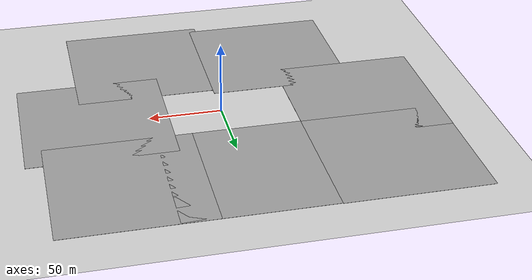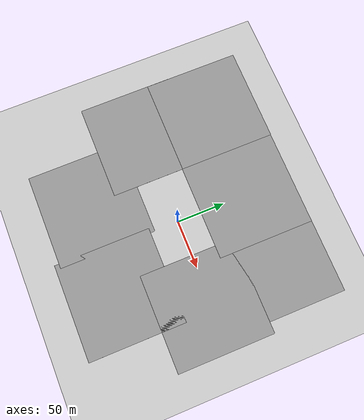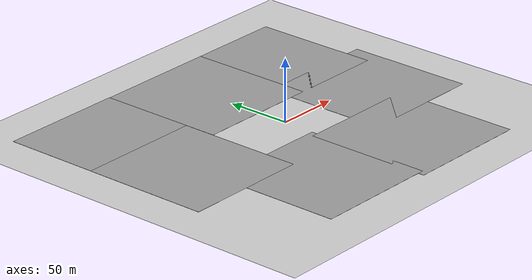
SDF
<sdf version="1.6">
 <world name="default">
  <light name="sun" type="directional">
   <pose>0 0 10 0 -0 0</pose>
   <diffuse>0.8 0.8 0.8 1</diffuse>
   <specular>0.2 0.2 0.2 1</specular>
   <attenuation>
    <range>1000</range>
    <constant>0.9</constant>
    <linear>0.01</linear>
    <quadratic>0.001</quadratic>
   </attenuation>
   <direction>-0.5 0.1 -0.9</direction>
  </light>
  <model name="ground_plane">
   <static>1</static>
   <link name="link">
    <collision name="collision">
     <geometry><plane><normal>0 0 1</normal><size>100 100</size></plane></geometry>
     <surface><friction><ode><mu>100</mu><mu2>50</mu2></ode></friction></surface>
    </collision>
    <visual name="visual">
     <cast_shadows>0</cast_shadows>
     <geometry><plane><normal>0 0 1</normal><size>100 100</size></plane></geometry>
     <material>
      <script><uri>file://media/materials/scripts/gazebo.material</uri><name>Gazebo/Grey</name></script>
     </material>
    </visual>
   </link>
  </model>
  <gravity>0 0 -9.8</gravity>
  <magnetic_field>6e-06 2.3e-05 -4.2e-05</magnetic_field>
  <atmosphere type="adiabatic"/>
  <physics name="default_physics" default="0" type="ode">
   <max_step_size>0.001</max_step_size>
   <real_time_factor>1</real_time_factor>
   <real_time_update_rate>1000</real_time_update_rate>
  </physics>
  <scene><ambient>0.4 0.4 0.4 1</ambient><background>0.7 0.7 0.7 1</background><shadows>1</shadows></scene>
  <spherical_coordinates>
   <surface_model>EARTH_WGS84</surface_model>
   <latitude_deg>0</latitude_deg>
   <longitude_deg>0</longitude_deg>
   <elevation>0</elevation>
   <heading_deg>0</heading_deg>
  </spherical_coordinates>
  <model name="ground_plane_0">
   <static>1</static>
   <link name="link">
    <collision name="collision">
     <geometry><plane><normal>0 0 1</normal><size>100 100</size></plane></geometry>
     <surface>
      <contact><collide_bitmask>65535</collide_bitmask></contact>
      <friction><ode><mu>100</mu><mu2>50</mu2></ode></friction>
     </surface>
    </collision>
    <visual name="visual">
     <cast_shadows>0</cast_shadows>
     <geometry><plane><normal>0 0 1</normal><size>100 100</size></plane></geometry>
     <material>
      <script><uri>file://media/materials/scripts/gazebo.material</uri><name>Gazebo/Grey</name></script>
     </material>
    </visual>
   </link>
   <pose>-99.8198 0.253195 0 0 -0 0</pose>
  </model>
  <model name="ground_plane_1">
   <static>1</static>
   <link name="link">
    <collision name="collision">
     <geometry><plane><normal>0 0 1</normal><size>100 100</size></plane></geometry>
     <surface>
      <contact><collide_bitmask>65535</collide_bitmask></contact>
      <friction><ode><mu>100</mu><mu2>50</mu2></ode></friction>
     </surface>
    </collision>
    <visual name="visual">
     <cast_shadows>0</cast_shadows>
     <geometry><plane><normal>0 0 1</normal><size>100 100</size></plane></geometry>
     <material>
      <script><uri>file://media/materials/scripts/gazebo.material</uri><name>Gazebo/Grey</name></script>
     </material>
    </visual>
   </link>
   <pose>0 75 0 0 -0 0</pose>
  </model>
  <model name="ground_plane_2">
   <static>1</static>
   <link name="link">
    <collision name="collision">
     <geometry><plane><normal>0 0 1</normal><size>100 100</size></plane></geometry>
     <surface>
      <contact><collide_bitmask>65535</collide_bitmask></contact>
      <friction><ode><mu>100</mu><mu2>50</mu2></ode></friction>
     </surface>
    </collision>
    <visual name="visual">
     <cast_shadows>0</cast_shadows>
     <geometry><plane><normal>0 0 1</normal><size>100 100</size></plane></geometry>
     <material>
      <script><uri>file://media/materials/scripts/gazebo.material</uri><name>Gazebo/Grey</name></script>
     </material>
    </visual>
   </link>
   <pose>75 75 0 0 -0 0</pose>
  </model>
  <model name="ground_plane_3">
   <static>1</static>
   <link name="link">
    <collision name="collision">
     <geometry><plane><normal>0 0 1</normal><size>100 100</size></plane></geometry>
     <surface>
      <contact><collide_bitmask>65535</collide_bitmask></contact>
      <friction><ode><mu>100</mu><mu2>50</mu2></ode></friction>
     </surface>
    </collision>
    <visual name="visual">
     <cast_shadows>0</cast_shadows>
     <geometry><plane><normal>0 0 1</normal><size>100 100</size></plane></geometry>
     <material>
      <script><uri>file://media/materials/scripts/gazebo.material</uri><name>Gazebo/Grey</name></script>
     </material>
    </visual>
   </link>
   <pose>86.6058 -5.23485 0 0 -0 0</pose>
  </model>
  <model name="ground_plane_4">
   <static>1</static>
   <link name="link">
    <collision name="collision">
     <geometry><plane><normal>0 0 1</normal><size>100 100</size></plane></geometry>
     <surface>
      <contact><collide_bitmask>65535</collide_bitmask></contact>
      <friction><ode><mu>100</mu><mu2>50</mu2></ode></friction>
     </surface>
    </collision>
    <visual name="visual">
     <cast_shadows>0</cast_shadows>
     <geometry><plane><normal>0 0 1</normal><size>100 100</size></plane></geometry>
     <material>
      <script><uri>file://media/materials/scripts/gazebo.material</uri><name>Gazebo/Grey</name></script>
     </material>
    </visual>
   </link>
   <pose>45 -79.7452 0 0 -0 0</pose>
  </model>
  <model name="ground_plane_5">
   <static>1</static>
   <link name="link">
    <collision name="collision">
     <geometry><plane><normal>0 0 1</normal><size>100 100</size></plane></geometry>
     <surface>
      <contact><collide_bitmask>65535</collide_bitmask></contact>
      <friction><ode><mu>100</mu><mu2>50</mu2></ode></friction>
     </surface>
    </collision>
    <visual name="visual">
     <cast_shadows>0</cast_shadows>
     <geometry><plane><normal>0 0 1</normal><size>100 100</size></plane></geometry>
     <material>
      <script><uri>file://media/materials/scripts/gazebo.material</uri><name>Gazebo/Grey</name></script>
     </material>
    </visual>
   </link>
   <pose>-50 -75 0 0 -0 0</pose>
  </model>
  <model name="ground_plane_6">
   <static>1</static>
   <link name="link">
    <collision name="collision">
     <geometry><plane><normal>0 0 1</normal><size>100 100</size></plane></geometry>
     <surface>
      <contact><collide_bitmask>65535</collide_bitmask></contact>
      <friction><ode><mu>100</mu><mu2>50</mu2></ode></friction>
     </surface>
    </collision>
    <visual name="visual">
     <cast_shadows>0</cast_shadows>
     <geometry><plane><normal>0 0 1</normal><size>100 100</size></plane></geometry>
     <material>
      <script><uri>file://media/materials/scripts/gazebo.material</uri><name>Gazebo/Grey</name></script>
     </material>
    </visual>
   </link>
   <pose>-99.7083 75.3652 0 0 -0 0</pose>
  </model>
 </world>
</sdf>
